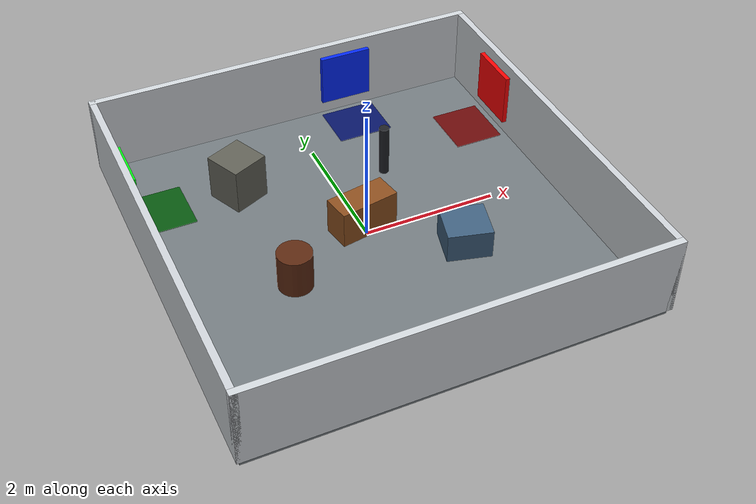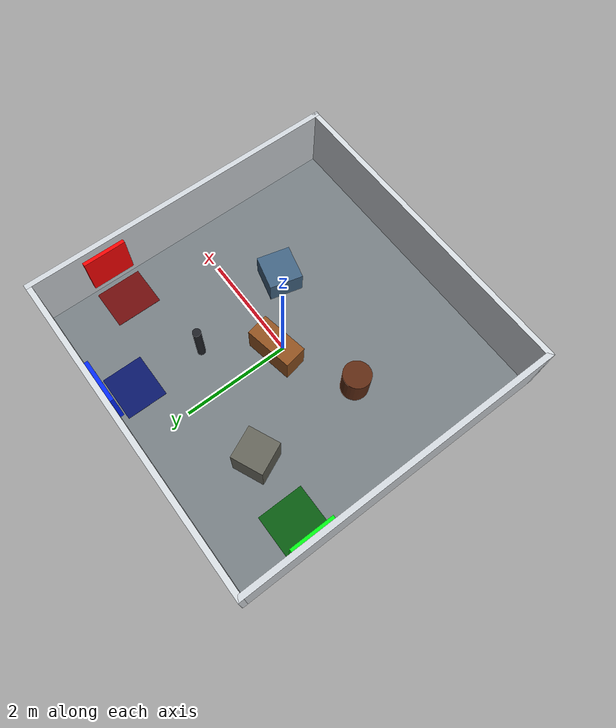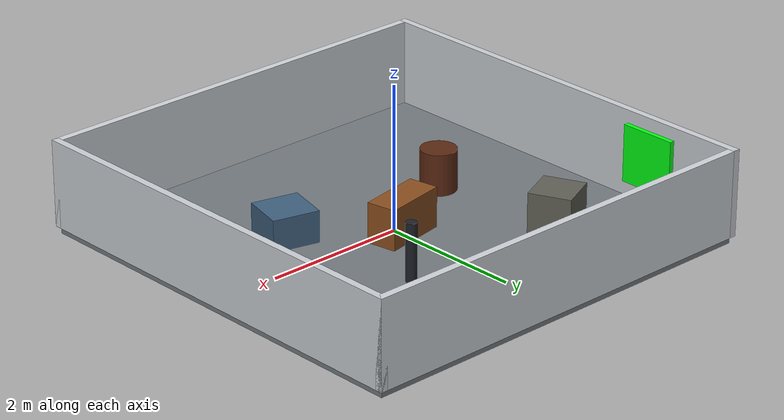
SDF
<?xml version="1.0"?>
<sdf version="1.9">
  <world name="delivery_room">
    <physics name="fast_stable" type="ignored">
      <max_step_size>0.001</max_step_size>
      <real_time_factor>1.0</real_time_factor>
    </physics>

    <plugin filename="gz-sim-physics-system" name="gz::sim::systems::Physics"/>
    <plugin filename="gz-sim-user-commands-system" name="gz::sim::systems::UserCommands"/>
    <plugin filename="gz-sim-scene-broadcaster-system" name="gz::sim::systems::SceneBroadcaster"/>
    <plugin filename="gz-sim-sensors-system" name="gz::sim::systems::Sensors">
      <render_engine>ogre2</render_engine>
    </plugin>

    <gravity>0 0 -9.81</gravity>
    <magnetic_field>5.64e-6 22.43e-6 -42.82e-6</magnetic_field>
    <atmosphere type="adiabatic"/>
    <scene>
      <ambient>0.55 0.55 0.55 1</ambient>
      <background>0.12 0.15 0.19 1</background>
      <shadows>true</shadows>
      <grid>false</grid>
    </scene>

    <light name="ceiling_light" type="point">
      <pose>0 0 3.4 0 0 0</pose>
      <diffuse>0.95 0.92 0.86 1</diffuse>
      <specular>0.25 0.25 0.25 1</specular>
      <attenuation><range>12</range><constant>0.3</constant><linear>0.03</linear><quadratic>0.005</quadratic></attenuation>
      <cast_shadows>true</cast_shadows>
    </light>
    <light name="fill_light" type="directional">
      <pose>0 0 3 0.2 -0.3 0</pose>
      <diffuse>0.45 0.50 0.60 1</diffuse>
      <specular>0.1 0.1 0.1 1</specular>
      <direction>-0.3 0.2 -1</direction>
      <cast_shadows>true</cast_shadows>
    </light>

    <model name="floor">
      <static>true</static>
      <link name="link">
        <collision name="collision"><geometry><box><size>6.0 6.0 0.10</size></box></geometry></collision>
        <visual name="visual">
          <geometry><box><size>6.0 6.0 0.10</size></box></geometry>
          <material><ambient>0.34 0.37 0.40 1</ambient><diffuse>0.45 0.48 0.50 1</diffuse><specular>0.08 0.08 0.08 1</specular></material>
        </visual>
        <pose>0 0 -0.05 0 0 0</pose>
      </link>
    </model>

    <!-- 6 m x 6 m room with 1.2 m walls, tall enough for the camera to perceive. -->
    <model name="north_wall">
      <static>true</static><pose>0 3.0 0.60 0 0 0</pose>
      <link name="link">
        <collision name="collision"><geometry><box><size>6.1 0.10 1.20</size></box></geometry></collision>
        <visual name="visual"><geometry><box><size>6.1 0.10 1.20</size></box></geometry><material><ambient>0.72 0.74 0.76 1</ambient><diffuse>0.82 0.84 0.86 1</diffuse></material></visual>
      </link>
    </model>
    <model name="south_wall">
      <static>true</static><pose>0 -3.0 0.60 0 0 0</pose>
      <link name="link">
        <collision name="collision"><geometry><box><size>6.1 0.10 1.20</size></box></geometry></collision>
        <visual name="visual"><geometry><box><size>6.1 0.10 1.20</size></box></geometry><material><ambient>0.72 0.74 0.76 1</ambient><diffuse>0.82 0.84 0.86 1</diffuse></material></visual>
      </link>
    </model>
    <model name="east_wall">
      <static>true</static><pose>3.0 0 0.60 0 0 0</pose>
      <link name="link">
        <collision name="collision"><geometry><box><size>0.10 6.1 1.20</size></box></geometry></collision>
        <visual name="visual"><geometry><box><size>0.10 6.1 1.20</size></box></geometry><material><ambient>0.68 0.71 0.74 1</ambient><diffuse>0.80 0.82 0.84 1</diffuse></material></visual>
      </link>
    </model>
    <model name="west_wall">
      <static>true</static><pose>-3.0 0 0.60 0 0 0</pose>
      <link name="link">
        <collision name="collision"><geometry><box><size>0.10 6.1 1.20</size></box></geometry></collision>
        <visual name="visual"><geometry><box><size>0.10 6.1 1.20</size></box></geometry><material><ambient>0.68 0.71 0.74 1</ambient><diffuse>0.80 0.82 0.84 1</diffuse></material></visual>
      </link>
    </model>

    <!-- Large saturated panels are visual delivery goals. No map or range laser is used. -->
    <model name="red_delivery_station">
      <static>true</static><pose>2.92 1.65 0.62 0 0 0</pose>
      <link name="sign">
        <collision name="collision"><geometry><box><size>0.08 0.80 0.80</size></box></geometry></collision>
        <visual name="visual"><geometry><box><size>0.08 0.80 0.80</size></box></geometry><material><ambient>0.75 0.01 0.01 1</ambient><diffuse>1.0 0.015 0.015 1</diffuse><emissive>0.12 0 0 1</emissive></material></visual>
      </link>
    </model>
    <model name="red_dock_marker">
      <static>true</static><pose>2.48 1.65 0.006 0 0 0</pose>
      <link name="link"><visual name="visual"><geometry><box><size>0.75 0.85 0.012</size></box></geometry><material><diffuse>0.42 0.04 0.04 1</diffuse></material></visual></link>
    </model>

    <model name="green_delivery_station">
      <static>true</static><pose>-2.92 1.65 0.62 0 0 0</pose>
      <link name="sign">
        <collision name="collision"><geometry><box><size>0.08 0.80 0.80</size></box></geometry></collision>
        <visual name="visual"><geometry><box><size>0.08 0.80 0.80</size></box></geometry><material><ambient>0.01 0.62 0.05 1</ambient><diffuse>0.01 1.0 0.08 1</diffuse><emissive>0 0.10 0 1</emissive></material></visual>
      </link>
    </model>
    <model name="green_dock_marker">
      <static>true</static><pose>-2.48 1.65 0.006 0 0 0</pose>
      <link name="link"><visual name="visual"><geometry><box><size>0.75 0.85 0.012</size></box></geometry><material><diffuse>0.03 0.34 0.06 1</diffuse></material></visual></link>
    </model>

    <model name="blue_delivery_station">
      <static>true</static><pose>0.95 2.92 0.62 0 0 0</pose>
      <link name="sign">
        <collision name="collision"><geometry><box><size>0.80 0.08 0.80</size></box></geometry></collision>
        <visual name="visual"><geometry><box><size>0.80 0.08 0.80</size></box></geometry><material><ambient>0.01 0.08 0.72 1</ambient><diffuse>0.015 0.16 1.0 1</diffuse><emissive>0 0.02 0.14 1</emissive></material></visual>
      </link>
    </model>
    <model name="blue_dock_marker">
      <static>true</static><pose>0.95 2.48 0.006 0 0 0</pose>
      <link name="link"><visual name="visual"><geometry><box><size>0.85 0.75 0.012</size></box></geometry><material><diffuse>0.03 0.08 0.40 1</diffuse></material></visual></link>
    </model>

    <!-- Furniture-sized obstacles exercise visual depth avoidance. -->
    <model name="central_cabinet">
      <static>true</static><pose>0 0.15 0.28 0 0 0.18</pose>
      <link name="link">
        <collision name="collision"><geometry><box><size>0.90 0.42 0.56</size></box></geometry></collision>
        <visual name="visual"><geometry><box><size>0.90 0.42 0.56</size></box></geometry><material><ambient>0.32 0.18 0.08 1</ambient><diffuse>0.55 0.31 0.12 1</diffuse></material></visual>
      </link>
    </model>
    <model name="low_ottoman">
      <static>true</static><pose>1.15 -0.78 0.22 0 0 -0.25</pose>
      <link name="link">
        <collision name="collision"><geometry><box><size>0.65 0.62 0.44</size></box></geometry></collision>
        <visual name="visual"><geometry><box><size>0.65 0.62 0.44</size></box></geometry><material><ambient>0.16 0.22 0.28 1</ambient><diffuse>0.25 0.38 0.50 1</diffuse></material></visual>
      </link>
    </model>
    <model name="plant_pot">
      <static>true</static><pose>-1.30 -0.55 0.29 0 0 0</pose>
      <link name="link">
        <collision name="collision"><geometry><cylinder><radius>0.25</radius><length>0.58</length></cylinder></geometry></collision>
        <visual name="visual"><geometry><cylinder><radius>0.25</radius><length>0.58</length></cylinder></geometry><material><ambient>0.18 0.09 0.04 1</ambient><diffuse>0.36 0.16 0.07 1</diffuse></material></visual>
      </link>
    </model>
    <model name="side_table">
      <static>true</static><pose>-1.35 1.55 0.35 0 0 0.42</pose>
      <link name="link">
        <collision name="collision"><geometry><box><size>0.58 0.58 0.70</size></box></geometry></collision>
        <visual name="visual"><geometry><box><size>0.58 0.58 0.70</size></box></geometry><material><ambient>0.20 0.20 0.18 1</ambient><diffuse>0.38 0.38 0.34 1</diffuse></material></visual>
      </link>
    </model>

    <!-- A narrow obstacle validates that the low-percentile depth guard sees
         furniture legs and poles instead of only broad cabinets. -->
    <model name="floor_lamp_pole">
      <static>true</static><pose>0.82 1.18 0.40 0 0 0</pose>
      <link name="link">
        <collision name="collision"><geometry><cylinder><radius>0.075</radius><length>0.80</length></cylinder></geometry></collision>
        <visual name="visual"><geometry><cylinder><radius>0.075</radius><length>0.80</length></cylinder></geometry><material><ambient>0.08 0.08 0.09 1</ambient><diffuse>0.12 0.13 0.15 1</diffuse></material></visual>
      </link>
    </model>

  </world>
</sdf>
